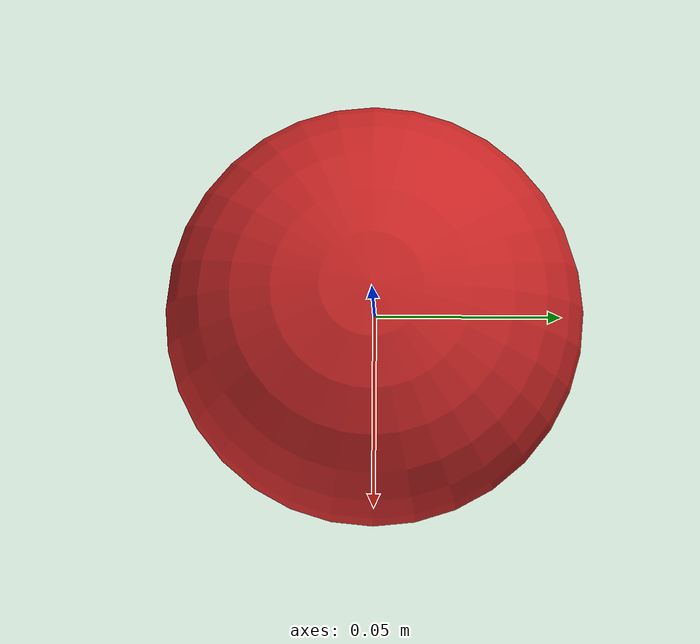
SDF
<?xml version='1.0'?>
<sdf version='1.7'>
  <model name='sphere'>
    <link name='link'>
      <inertial>
        <mass>1</mass>
        <inertia>
          <ixx>0.166667</ixx>
          <ixy>0</ixy>
          <ixz>0</ixz>
          <iyy>0.166667</iyy>
          <iyz>0</iyz>
          <izz>0.166667</izz>
        </inertia>
      </inertial>
      <pose>0 0 0 0 -0 0</pose>
      <visual name='visual'>
        <pose>0 0 0 0 -0 0</pose>
        <geometry>
          <mesh>
            <uri>model://sphere/meshes/sphere.obj</uri>
            <scale>1 1 1</scale>
          </mesh>
        </geometry>
        <material>
          <lighting>1</lighting>
          <script>
            <uri>file://media/materials/scripts/gazebo.material</uri>
            <name>Gazebo/Red</name>
          </script>
          <shader type='pixel'/>
        </material>
        <transparency>0</transparency>
        <cast_shadows>1</cast_shadows>
      </visual>
      <collision name='collision'>
        <laser_retro>0</laser_retro>
        <max_contacts>10</max_contacts>
        <pose>0 0 0 0 -0 0</pose>
        <geometry>
          <mesh>
            <uri>model://sphere/meshes/sphere.obj</uri>
            <scale>1 1 1</scale>
          </mesh>
        </geometry>
        <surface>
          <friction>
            <ode>
              <mu>1</mu>
              <mu2>1</mu2>
              <fdir1>0 0 0</fdir1>
              <slip1>0</slip1>
              <slip2>0</slip2>
            </ode>
            <torsional>
              <coefficient>1</coefficient>
              <patch_radius>0</patch_radius>
              <surface_radius>0</surface_radius>
              <use_patch_radius>1</use_patch_radius>
              <ode>
                <slip>0</slip>
              </ode>
            </torsional>
          </friction>
          <bounce>
            <restitution_coefficient>0</restitution_coefficient>
            <threshold>1e+06</threshold>
          </bounce>
          <contact>
            <collide_without_contact>0</collide_without_contact>
            <collide_without_contact_bitmask>1</collide_without_contact_bitmask>
            <collide_bitmask>1</collide_bitmask>
            <ode>
              <soft_cfm>0</soft_cfm>
              <soft_erp>0.2</soft_erp>
              <kp>1e+13</kp>
              <kd>1</kd>
              <max_vel>0.01</max_vel>
              <min_depth>0</min_depth>
            </ode>
            <bullet>
              <split_impulse>1</split_impulse>
              <split_impulse_penetration_threshold>-0.01</split_impulse_penetration_threshold>
              <soft_cfm>0</soft_cfm>
              <soft_erp>0.2</soft_erp>
              <kp>1e+13</kp>
              <kd>1</kd>
            </bullet>
          </contact>
        </surface>
      </collision>
    </link>
    <static>0</static>
    <allow_auto_disable>1</allow_auto_disable>
    <plugin name="BuoyancyPlugin" filename="libbuoyancy_gazebo_plugin.so">
      <wave_model>ocean_waves</wave_model>
      <fluid_density>900</fluid_density>
      <fluid_level>0</fluid_level>
      <linear_drag>800</linear_drag>
      <angular_drag>1000</angular_drag>
      <buoyancy name="buoyancy_base">
        <link_name>link</link_name>
        <pose>0 0 0 0 0 0</pose>
        <geometry>
          <box>
            <size>0.098764 0.098764 0.098764</size>
          </box>
        </geometry>
      </buoyancy>
    </plugin>
  </model>
</sdf>
